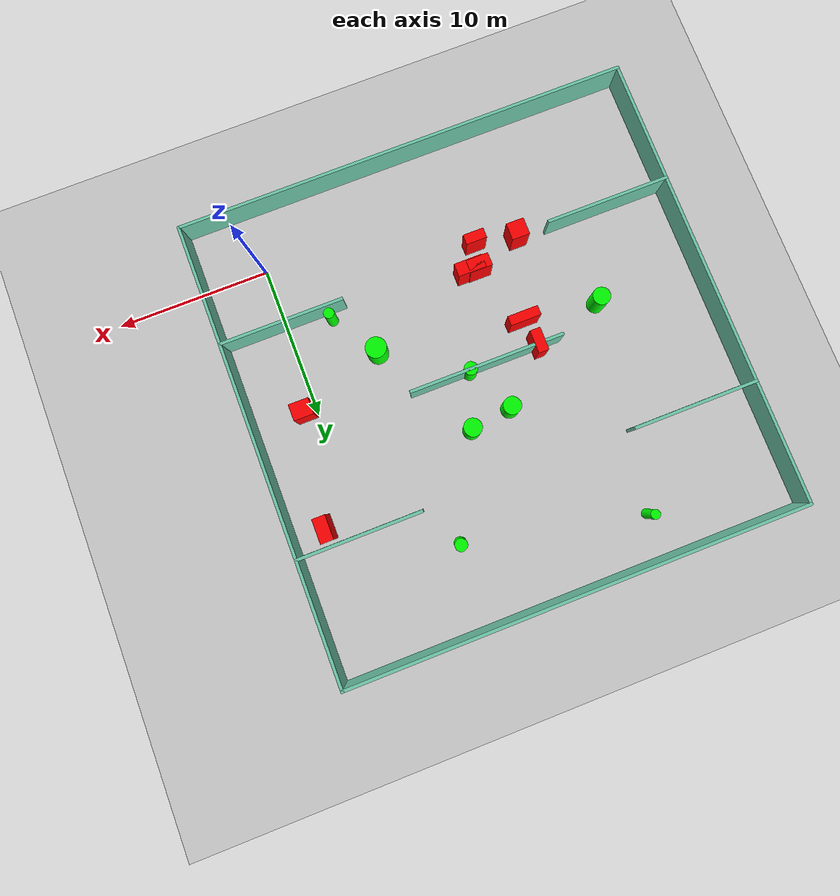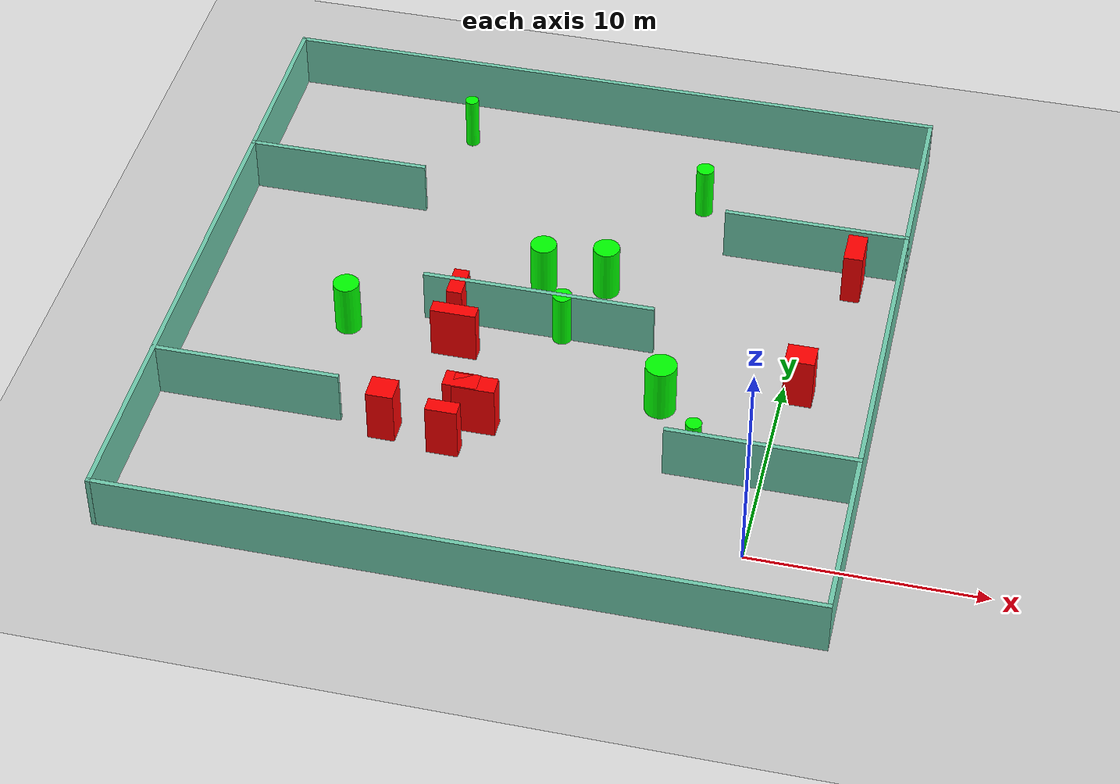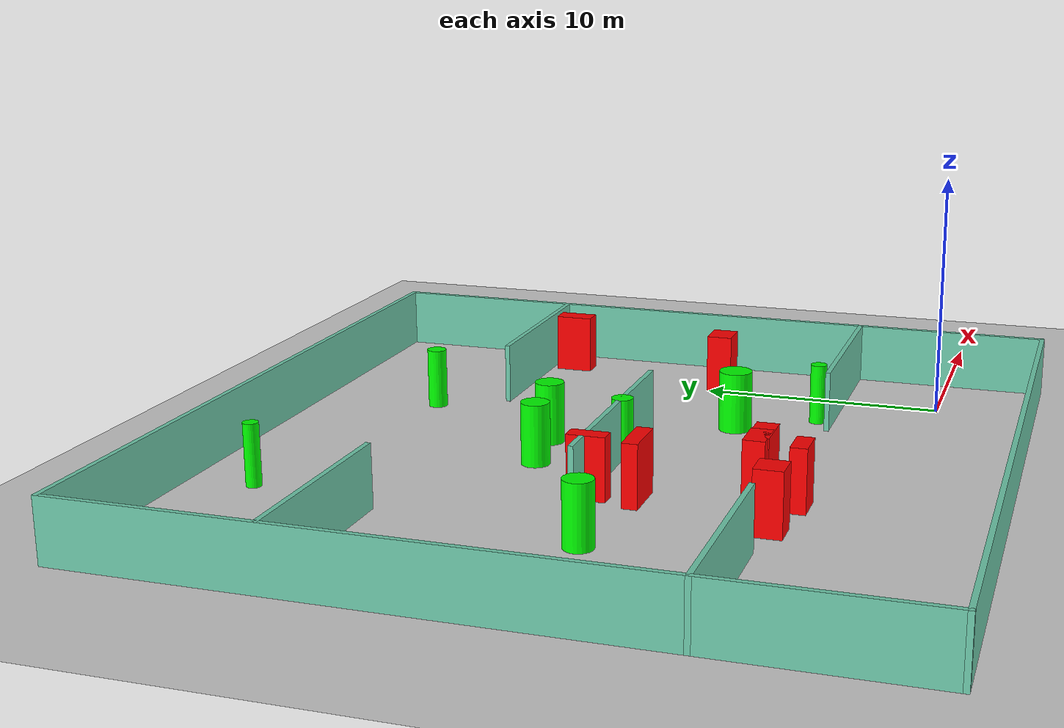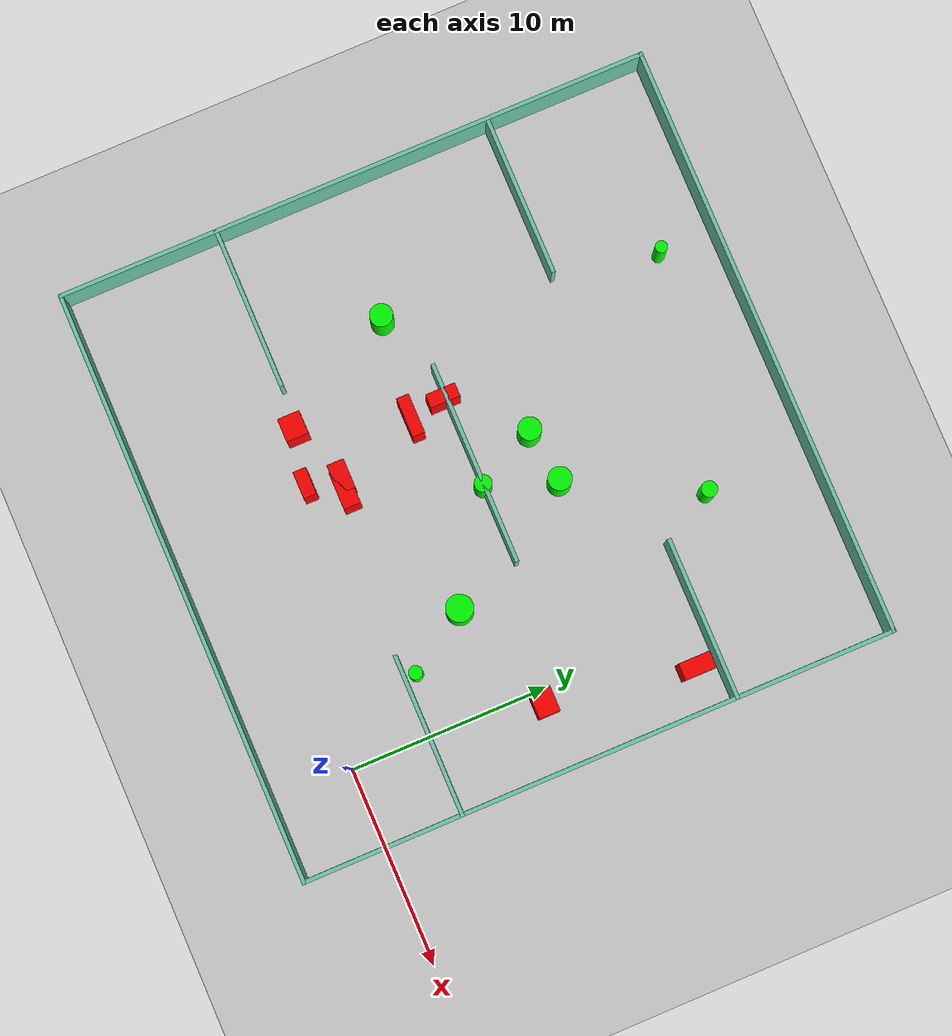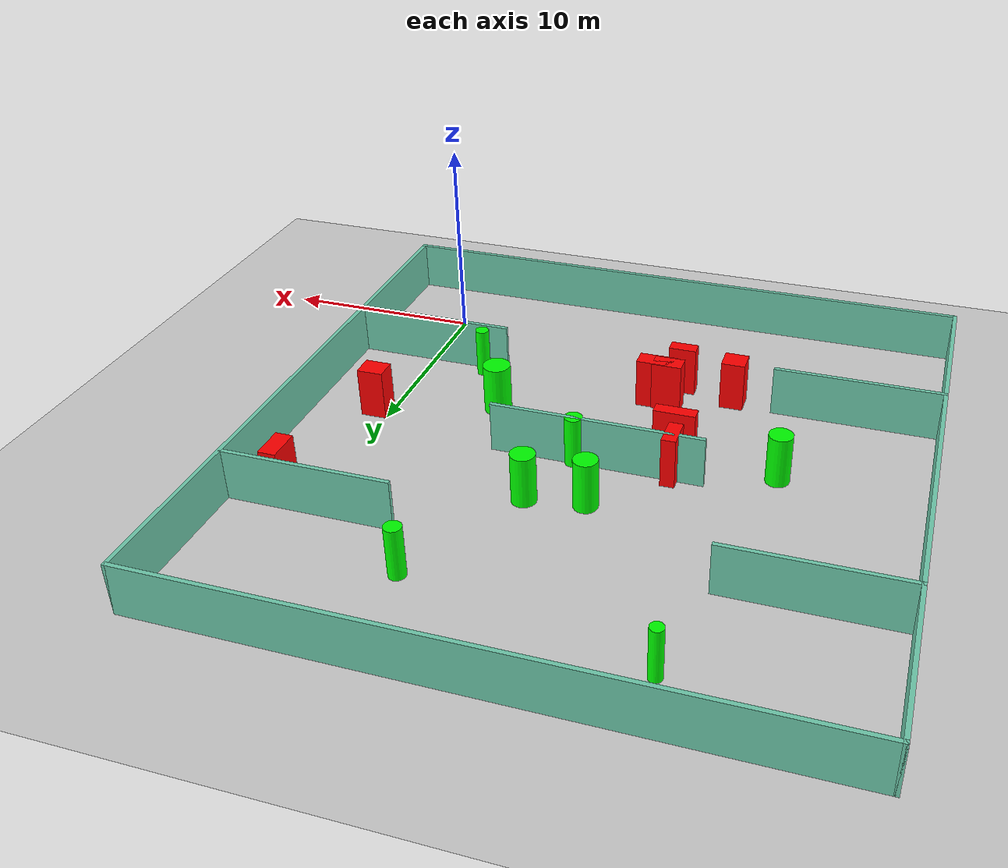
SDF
<sdf version="1.7">
 <world name="default">
  <light name="sun" type="directional">
   <pose>0 0 10 0 -0 0</pose>
   <diffuse>0.8 0.8 0.8 1</diffuse>
   <specular>0.2 0.2 0.2 1</specular>
   <attenuation>
    <range>1000</range>
    <constant>0.9</constant>
    <linear>0.01</linear>
    <quadratic>0.001</quadratic>
   </attenuation>
   <direction>-0.5 0.1 -0.9</direction>
   <spot><inner_angle>0</inner_angle><outer_angle>0</outer_angle><falloff>0</falloff></spot>
  </light>
  <model name="ground_plane">
   <static>1</static>
   <link name="link">
    <collision name="collision">
     <geometry><plane><normal>0 0 1</normal><size>100 100</size></plane></geometry>
     <surface>
      <contact><collide_bitmask>65535</collide_bitmask></contact>
      <friction><ode><mu>100</mu><mu2>50</mu2></ode></friction>
     </surface>
    </collision>
    <visual name="visual">
     <cast_shadows>0</cast_shadows>
     <geometry><plane><normal>0 0 1</normal><size>100 100</size></plane></geometry>
     <material>
      <script><uri>file://media/materials/scripts/gazebo.material</uri><name>Gazebo/Grey</name></script>
     </material>
    </visual>
   </link>
  </model>
  <gravity>0 0 -9.8</gravity>
  <magnetic_field>6e-06 2.3e-05 -4.2e-05</magnetic_field>
  <atmosphere type="adiabatic"/>
  <physics type="ode">
   <max_step_size>0.001</max_step_size>
   <real_time_factor>1</real_time_factor>
   <real_time_update_rate>1000</real_time_update_rate>
  </physics>
  <scene><ambient>0.4 0.4 0.4 1</ambient><background>0.7 0.7 0.7 1</background><shadows>1</shadows></scene>
  <spherical_coordinates>
   <surface_model>EARTH_WGS84</surface_model>
   <latitude_deg>0</latitude_deg>
   <longitude_deg>0</longitude_deg>
   <elevation>0</elevation>
   <heading_deg>0</heading_deg>
  </spherical_coordinates>
  <model name="my_base_walls">
   <link name="Wall_10">
    <collision name="Wall_10_Collision">
     <geometry><box><size>8.2 0.2 2.5</size></box></geometry>
     <pose>0 0 1.25 0 -0 0</pose>
    </collision>
    <visual name="Wall_10_Visual">
     <pose>0 0 1.25 0 -0 0</pose>
     <geometry><box><size>8.2 0.2 2.5</size></box></geometry>
     <material>
      <script><uri>file://media/materials/scripts/gazebo.material</uri><name>Gazebo/Grey</name></script>
      <ambient>0.435294 0.796078 0.67451 1</ambient>
     </material>
     <meta><layer>0</layer></meta>
    </visual>
    <pose>-11 -7 0 0 -0 0</pose>
   </link>
   <link name="Wall_12">
    <collision name="Wall_12_Collision">
     <geometry><box><size>8.2 0.2 2.5</size></box></geometry>
     <pose>0 0 1.25 0 -0 0</pose>
    </collision>
    <visual name="Wall_12_Visual">
     <pose>0 0 1.25 0 -0 0</pose>
     <geometry><box><size>8.2 0.2 2.5</size></box></geometry>
     <material>
      <script><uri>file://media/materials/scripts/gazebo.material</uri><name>Gazebo/Grey</name></script>
      <ambient>0.435294 0.796078 0.67451 1</ambient>
     </material>
     <meta><layer>0</layer></meta>
    </visual>
    <pose>-11 7 0 0 -0 0</pose>
   </link>
   <link name="Wall_14">
    <collision name="Wall_14_Collision">
     <geometry><box><size>8.2 0.2 2.5</size></box></geometry>
     <pose>0 0 1.25 0 -0 0</pose>
    </collision>
    <visual name="Wall_14_Visual">
     <pose>0 0 1.25 0 -0 0</pose>
     <geometry><box><size>8.2 0.2 2.5</size></box></geometry>
     <material>
      <script><uri>file://media/materials/scripts/gazebo.material</uri><name>Gazebo/Grey</name></script>
      <ambient>0.435294 0.796078 0.67451 1</ambient>
     </material>
     <meta><layer>0</layer></meta>
    </visual>
    <pose>11 7 0 0 -0 3.14159</pose>
   </link>
   <link name="Wall_16">
    <collision name="Wall_16_Collision">
     <geometry><box><size>10.2 0.2 2.5</size></box></geometry>
     <pose>0 0 1.25 0 -0 0</pose>
    </collision>
    <visual name="Wall_16_Visual">
     <pose>0 0 1.25 0 -0 0</pose>
     <geometry><box><size>10.2 0.2 2.5</size></box></geometry>
     <material>
      <script><uri>file://media/materials/scripts/gazebo.material</uri><name>Gazebo/Grey</name></script>
      <ambient>0.435294 0.796078 0.67451 1</ambient>
     </material>
     <meta><layer>0</layer></meta>
    </visual>
    <pose>0 0 0 0 -0 3.14159</pose>
   </link>
   <link name="Wall_2">
    <collision name="Wall_2_Collision">
     <geometry><box><size>30.2 0.2 2.5</size></box></geometry>
     <pose>0 0 1.25 0 -0 0</pose>
    </collision>
    <visual name="Wall_2_Visual">
     <pose>0 0 1.25 0 -0 0</pose>
     <geometry><box><size>30.2 0.2 2.5</size></box></geometry>
     <material>
      <script><uri>file://media/materials/scripts/gazebo.material</uri><name>Gazebo/Grey</name></script>
      <ambient>0.435294 0.796078 0.67451 1</ambient>
     </material>
     <meta><layer>0</layer></meta>
    </visual>
    <pose>0 -15 0 0 -0 3.14159</pose>
   </link>
   <link name="Wall_3">
    <collision name="Wall_3_Collision">
     <geometry><box><size>30.2 0.2 2.5</size></box></geometry>
     <pose>0 0 1.25 0 -0 0</pose>
    </collision>
    <visual name="Wall_3_Visual">
     <pose>0 0 1.25 0 -0 0</pose>
     <geometry><box><size>30.2 0.2 2.5</size></box></geometry>
     <material>
      <script><uri>file://media/materials/scripts/gazebo.material</uri><name>Gazebo/Grey</name></script>
      <ambient>0.435294 0.796078 0.67451 1</ambient>
     </material>
     <meta><layer>0</layer></meta>
    </visual>
    <pose>-15 0 0 0 -0 1.5708</pose>
   </link>
   <link name="Wall_4">
    <collision name="Wall_4_Collision">
     <geometry><box><size>30.2 0.2 2.5</size></box></geometry>
     <pose>0 0 1.25 0 -0 0</pose>
    </collision>
    <visual name="Wall_4_Visual">
     <pose>0 0 1.25 0 -0 0</pose>
     <geometry><box><size>30.2 0.2 2.5</size></box></geometry>
     <material>
      <script><uri>file://media/materials/scripts/gazebo.material</uri><name>Gazebo/Grey</name></script>
      <ambient>0.435294 0.796078 0.67451 1</ambient>
     </material>
     <meta><layer>0</layer></meta>
    </visual>
    <pose>0 15 0 0 -0 0</pose>
   </link>
   <link name="Wall_6">
    <collision name="Wall_6_Collision">
     <geometry><box><size>30.2 0.2 2.5</size></box></geometry>
     <pose>0 0 1.25 0 -0 0</pose>
    </collision>
    <visual name="Wall_6_Visual">
     <pose>0 0 1.25 0 -0 0</pose>
     <geometry><box><size>30.2 0.2 2.5</size></box></geometry>
     <material>
      <script><uri>file://media/materials/scripts/gazebo.material</uri><name>Gazebo/Grey</name></script>
      <ambient>0.435294 0.796078 0.67451 1</ambient>
     </material>
     <meta><layer>0</layer></meta>
    </visual>
    <pose>15 0 0 0 -0 1.5708</pose>
   </link>
   <link name="Wall_8">
    <collision name="Wall_8_Collision">
     <geometry><box><size>8.2 0.2 2.5</size></box></geometry>
     <pose>0 0 1.25 0 -0 0</pose>
    </collision>
    <visual name="Wall_8_Visual">
     <pose>0 0 1.25 0 -0 0</pose>
     <geometry><box><size>8.2 0.2 2.5</size></box></geometry>
     <material>
      <script><uri>file://media/materials/scripts/gazebo.material</uri><name>Gazebo/Grey</name></script>
      <ambient>0.435294 0.796078 0.67451 1</ambient>
     </material>
     <meta><layer>0</layer></meta>
    </visual>
    <pose>11 -7 0 0 -0 3.14159</pose>
   </link>
   <static>1</static>
   <pose>-11 11 0 0 -0 0</pose>
  </model>
  <model name="cylinder1">
   <static>1</static>
   <link name="link">
    <inertial>
     <mass>1</mass>
     <inertia><ixx>0.5</ixx><ixy>0</ixy><ixz>0</ixz><iyy>0.5</iyy><iyz>0</iyz><izz>1</izz></inertia>
    </inertial>
    <collision name="collision">
     <geometry><cylinder><radius>0.4305721529577004</radius><length>2.5</length></cylinder></geometry>
    </collision>
    <visual name="visual">
     <geometry><cylinder><radius>0.4305721529577004</radius><length>2.5</length></cylinder></geometry>
     <material>
      <ambient>0 1 0 1</ambient>
      <diffuse>0 1 0 1</diffuse>
      <specular>0.1 0.1 0.1 1</specular>
      <emissive>0 0 0 0</emissive>
     </material>
    </visual>
   </link>
   <pose>-9.932332436628144 10.977373772922347 1.25 0 0 0</pose>
  </model>
  <model name="cylinder2">
   <static>1</static>
   <link name="link">
    <inertial>
     <mass>1</mass>
     <inertia><ixx>0.5</ixx><ixy>0</ixy><ixz>0</ixz><iyy>0.5</iyy><iyz>0</iyz><izz>1</izz></inertia>
    </inertial>
    <collision name="collision">
     <geometry><cylinder><radius>0.30394527291670903</radius><length>2.5</length></cylinder></geometry>
    </collision>
    <visual name="visual">
     <geometry><cylinder><radius>0.30394527291670903</radius><length>2.5</length></cylinder></geometry>
     <material>
      <ambient>0 1 0 1</ambient>
      <diffuse>0 1 0 1</diffuse>
      <specular>0.1 0.1 0.1 1</specular>
      <emissive>0 0 0 0</emissive>
     </material>
    </visual>
   </link>
   <pose>-17.03412043624589 23.20134434547444 1.25 0 0 0</pose>
  </model>
  <model name="cylinder3">
   <static>1</static>
   <link name="link">
    <inertial>
     <mass>1</mass>
     <inertia><ixx>0.5</ixx><ixy>0</ixy><ixz>0</ixz><iyy>0.5</iyy><iyz>0</iyz><izz>1</izz></inertia>
    </inertial>
    <collision name="collision">
     <geometry><cylinder><radius>0.6785385006400946</radius><length>2.5</length></cylinder></geometry>
    </collision>
    <visual name="visual">
     <geometry><cylinder><radius>0.6785385006400946</radius><length>2.5</length></cylinder></geometry>
     <material>
      <ambient>0 1 0 1</ambient>
      <diffuse>0 1 0 1</diffuse>
      <specular>0.1 0.1 0.1 1</specular>
      <emissive>0 0 0 0</emissive>
     </material>
    </visual>
   </link>
   <pose>-4.93089425991392 7.653837273471016 1.25 0 0 0</pose>
  </model>
  <model name="cylinder4">
   <static>1</static>
   <link name="link">
    <inertial>
     <mass>1</mass>
     <inertia><ixx>0.5</ixx><ixy>0</ixy><ixz>0</ixz><iyy>0.5</iyy><iyz>0</iyz><izz>1</izz></inertia>
    </inertial>
    <collision name="collision">
     <geometry><cylinder><radius>0.5868224342396486</radius><length>2.5</length></cylinder></geometry>
    </collision>
    <visual name="visual">
     <geometry><cylinder><radius>0.5868224342396486</radius><length>2.5</length></cylinder></geometry>
     <material>
      <ambient>0 1 0 1</ambient>
      <diffuse>0 1 0 1</diffuse>
      <specular>0.1 0.1 0.1 1</specular>
      <emissive>0 0 0 0</emissive>
     </material>
    </visual>
   </link>
   <pose>-8.725002839357657 14.40878819354451 1.25 0 0 0</pose>
  </model>
  <model name="cylinder5">
   <static>1</static>
   <link name="link">
    <inertial>
     <mass>1</mass>
     <inertia><ixx>0.5</ixx><ixy>0</ixy><ixz>0</ixz><iyy>0.5</iyy><iyz>0</iyz><izz>1</izz></inertia>
    </inertial>
    <collision name="collision">
     <geometry><cylinder><radius>0.5752319994834034</radius><length>2.5</length></cylinder></geometry>
    </collision>
    <visual name="visual">
     <geometry><cylinder><radius>0.5752319994834034</radius><length>2.5</length></cylinder></geometry>
     <material>
      <ambient>0 1 0 1</ambient>
      <diffuse>0 1 0 1</diffuse>
      <specular>0.1 0.1 0.1 1</specular>
      <emissive>0 0 0 0</emissive>
     </material>
    </visual>
   </link>
   <pose>-11.465995753419419 14.022453164974774 1.25 0 0 0</pose>
  </model>
  <model name="cylinder6">
   <static>1</static>
   <link name="link">
    <inertial>
     <mass>1</mass>
     <inertia><ixx>0.5</ixx><ixy>0</ixy><ixz>0</ixz><iyy>0.5</iyy><iyz>0</iyz><izz>1</izz></inertia>
    </inertial>
    <collision name="collision">
     <geometry><cylinder><radius>0.5707971366415407</radius><length>2.5</length></cylinder></geometry>
    </collision>
    <visual name="visual">
     <geometry><cylinder><radius>0.5707971366415407</radius><length>2.5</length></cylinder></geometry>
     <material>
      <ambient>0 1 0 1</ambient>
      <diffuse>0 1 0 1</diffuse>
      <specular>0.1 0.1 0.1 1</specular>
      <emissive>0 0 0 0</emissive>
     </material>
    </visual>
   </link>
   <pose>-19.205043645367063 9.658253119166268 1.25 0 0 0</pose>
  </model>
  <model name="cylinder7">
   <static>1</static>
   <link name="link">
    <inertial>
     <mass>1</mass>
     <inertia><ixx>0.5</ixx><ixy>0</ixy><ixz>0</ixz><iyy>0.5</iyy><iyz>0</iyz><izz>1</izz></inertia>
    </inertial>
    <collision name="collision">
     <geometry><cylinder><radius>0.40051881541554146</radius><length>2.5</length></cylinder></geometry>
    </collision>
    <visual name="visual">
     <geometry><cylinder><radius>0.40051881541554146</radius><length>2.5</length></cylinder></geometry>
     <material>
      <ambient>0 1 0 1</ambient>
      <diffuse>0 1 0 1</diffuse>
      <specular>0.1 0.1 0.1 1</specular>
      <emissive>0 0 0 0</emissive>
     </material>
    </visual>
   </link>
   <pose>-5.513625220582949 20.69440952957813 1.25 0 0 0</pose>
  </model>
  <model name="cylinder8">
   <static>1</static>
   <link name="link">
    <inertial>
     <mass>1</mass>
     <inertia><ixx>0.5</ixx><ixy>0</ixy><ixz>0</ixz><iyy>0.5</iyy><iyz>0</iyz><izz>1</izz></inertia>
    </inertial>
    <collision name="collision">
     <geometry><cylinder><radius>0.34234563907734156</radius><length>2.5</length></cylinder></geometry>
    </collision>
    <visual name="visual">
     <geometry><cylinder><radius>0.34234563907734156</radius><length>2.5</length></cylinder></geometry>
     <material>
      <ambient>0 1 0 1</ambient>
      <diffuse>0 1 0 1</diffuse>
      <specular>0.1 0.1 0.1 1</specular>
      <emissive>0 0 0 0</emissive>
     </material>
    </visual>
   </link>
   <pose>-2.957720122537321 4.576062057361568 1.25 0 0 0</pose>
  </model>
  <model name="box1">
   <static>1</static>
   <link name="link">
    <inertial>
     <mass>1</mass>
     <inertia><ixx>0.083</ixx><ixy>0</ixy><ixz>0</ixz><iyy>0.083</iyy><iyz>0</iyz><izz>0.083</izz></inertia>
    </inertial>
    <collision name="collision">
     <geometry><box><size>1.9981481777711356 0.6202265013546795 2.5</size></box></geometry>
    </collision>
    <visual name="visual">
     <geometry><box><size>1.9981481777711356 0.6202265013546795 2.5</size></box></geometry>
     <material>
      <ambient>1 0 0 1</ambient>
      <diffuse>1 0 0 1</diffuse>
      <specular>0.1 0.1 0.1 1</specular>
      <emissive>0 0 0 0</emissive>
     </material>
    </visual>
    <sensor name="my_contact" type="contact">
     <contact><collision>box_collision</collision><topic>__default_topic__</topic></contact>
    </sensor>
   </link>
   <pose>-14.240727233578886 9.080827361198802 1.25 0 0 0</pose>
  </model>
  <model name="box2">
   <static>1</static>
   <link name="link">
    <inertial>
     <mass>1</mass>
     <inertia><ixx>0.083</ixx><ixy>0</ixy><ixz>0</ixz><iyy>0.083</iyy><iyz>0</iyz><izz>0.083</izz></inertia>
    </inertial>
    <collision name="collision">
     <geometry><box><size>1.1663098321068777 1.110255249724554 2.5</size></box></geometry>
    </collision>
    <visual name="visual">
     <geometry><box><size>1.1663098321068777 1.110255249724554 2.5</size></box></geometry>
     <material>
      <ambient>1 0 0 1</ambient>
      <diffuse>1 0 0 1</diffuse>
      <specular>0.1 0.1 0.1 1</specular>
      <emissive>0 0 0 0</emissive>
     </material>
    </visual>
    <sensor name="my_contact" type="contact">
     <contact><collision>box_collision</collision><topic>__default_topic__</topic></contact>
    </sensor>
   </link>
   <pose>-15.940836056669475 3.7589287441196326 1.25 0 0 0</pose>
  </model>
  <model name="box3">
   <static>1</static>
   <link name="link">
    <inertial>
     <mass>1</mass>
     <inertia><ixx>0.083</ixx><ixy>0</ixy><ixz>0</ixz><iyy>0.083</iyy><iyz>0</iyz><izz>0.083</izz></inertia>
    </inertial>
    <collision name="collision">
     <geometry><box><size>1.4782787967879145 0.8520366402581658 2.5</size></box></geometry>
    </collision>
    <visual name="visual">
     <geometry><box><size>1.4782787967879145 0.8520366402581658 2.5</size></box></geometry>
     <material>
      <ambient>1 0 0 1</ambient>
      <diffuse>1 0 0 1</diffuse>
      <specular>0.1 0.1 0.1 1</specular>
      <emissive>0 0 0 0</emissive>
     </material>
    </visual>
    <sensor name="my_contact" type="contact">
     <contact><collision>box_collision</collision><topic>__default_topic__</topic></contact>
    </sensor>
   </link>
   <pose>-12.85290610647025 4.935050598867194 1.25 0 0 0</pose>
  </model>
  <model name="box4">
   <static>1</static>
   <link name="link">
    <inertial>
     <mass>1</mass>
     <inertia><ixx>0.083</ixx><ixy>0</ixy><ixz>0</ixz><iyy>0.083</iyy><iyz>0</iyz><izz>0.083</izz></inertia>
    </inertial>
    <collision name="collision">
     <geometry><box><size>1.848648614684565 0.8560566616376634 2.5</size></box></geometry>
    </collision>
    <visual name="visual">
     <geometry><box><size>1.848648614684565 0.8560566616376634 2.5</size></box></geometry>
     <material>
      <ambient>1 0 0 1</ambient>
      <diffuse>1 0 0 1</diffuse>
      <specular>0.1 0.1 0.1 1</specular>
      <emissive>0 0 0 0</emissive>
     </material>
    </visual>
    <sensor name="my_contact" type="contact">
     <contact><collision>box_collision</collision><topic>__default_topic__</topic></contact>
    </sensor>
   </link>
   <pose>-12.26671295345923 4.884535362466329 1.25 0 0 0</pose>
  </model>
  <model name="box5">
   <static>1</static>
   <link name="link">
    <inertial>
     <mass>1</mass>
     <inertia><ixx>0.083</ixx><ixy>0</ixy><ixz>0</ixz><iyy>0.083</iyy><iyz>0</iyz><izz>0.083</izz></inertia>
    </inertial>
    <collision name="collision">
     <geometry><box><size>0.8449087995789093 1.5886920603531451 2.5</size></box></geometry>
    </collision>
    <visual name="visual">
     <geometry><box><size>0.8449087995789093 1.5886920603531451 2.5</size></box></geometry>
     <material>
      <ambient>1 0 0 1</ambient>
      <diffuse>1 0 0 1</diffuse>
      <specular>0.1 0.1 0.1 1</specular>
      <emissive>0 0 0 0</emissive>
     </material>
    </visual>
    <sensor name="my_contact" type="contact">
     <contact><collision>box_collision</collision><topic>__default_topic__</topic></contact>
    </sensor>
   </link>
   <pose>1.9017759949736543 16.86791747187464 1.25 0 0 0</pose>
  </model>
  <model name="box6">
   <static>1</static>
   <link name="link">
    <inertial>
     <mass>1</mass>
     <inertia><ixx>0.083</ixx><ixy>0</ixy><ixz>0</ixz><iyy>0.083</iyy><iyz>0</iyz><izz>0.083</izz></inertia>
    </inertial>
    <collision name="collision">
     <geometry><box><size>0.6798018149335947 1.5011063996018195 2.5</size></box></geometry>
    </collision>
    <visual name="visual">
     <geometry><box><size>0.6798018149335947 1.5011063996018195 2.5</size></box></geometry>
     <material>
      <ambient>1 0 0 1</ambient>
      <diffuse>1 0 0 1</diffuse>
      <specular>0.1 0.1 0.1 1</specular>
      <emissive>0 0 0 0</emissive>
     </material>
    </visual>
    <sensor name="my_contact" type="contact">
     <contact><collision>box_collision</collision><topic>__default_topic__</topic></contact>
    </sensor>
   </link>
   <pose>-14.5289808847861 10.85598666418793 1.25 0 0 0</pose>
  </model>
  <model name="box7">
   <static>1</static>
   <link name="link">
    <inertial>
     <mass>1</mass>
     <inertia><ixx>0.083</ixx><ixy>0</ixy><ixz>0</ixz><iyy>0.083</iyy><iyz>0</iyz><izz>0.083</izz></inertia>
    </inertial>
    <collision name="collision">
     <geometry><box><size>1.3608804592195431 0.6561126165013746 2.5</size></box></geometry>
    </collision>
    <visual name="visual">
     <geometry><box><size>1.3608804592195431 0.6561126165013746 2.5</size></box></geometry>
     <material>
      <ambient>1 0 0 1</ambient>
      <diffuse>1 0 0 1</diffuse>
      <specular>0.1 0.1 0.1 1</specular>
      <emissive>0 0 0 0</emissive>
     </material>
    </visual>
    <sensor name="my_contact" type="contact">
     <contact><collision>box_collision</collision><topic>__default_topic__</topic></contact>
    </sensor>
   </link>
   <pose>-13.23269083119002 3.2357877675525346 1.25 0 0 0</pose>
  </model>
  <model name="box8">
   <static>1</static>
   <link name="link">
    <inertial>
     <mass>1</mass>
     <inertia><ixx>0.083</ixx><ixy>0</ixy><ixz>0</ixz><iyy>0.083</iyy><iyz>0</iyz><izz>0.083</izz></inertia>
    </inertial>
    <collision name="collision">
     <geometry><box><size>1.2794029839701047 1.0662385698826018 2.5</size></box></geometry>
    </collision>
    <visual name="visual">
     <geometry><box><size>1.2794029839701047 1.0662385698826018 2.5</size></box></geometry>
     <material>
      <ambient>1 0 0 1</ambient>
      <diffuse>1 0 0 1</diffuse>
      <specular>0.1 0.1 0.1 1</specular>
      <emissive>0 0 0 0</emissive>
     </material>
    </visual>
    <sensor name="my_contact" type="contact">
     <contact><collision>box_collision</collision><topic>__default_topic__</topic></contact>
    </sensor>
   </link>
   <pose>0.6789893279447661 9.597871742412208 1.25 0 0 0</pose>
  </model>
 </world>
</sdf>
